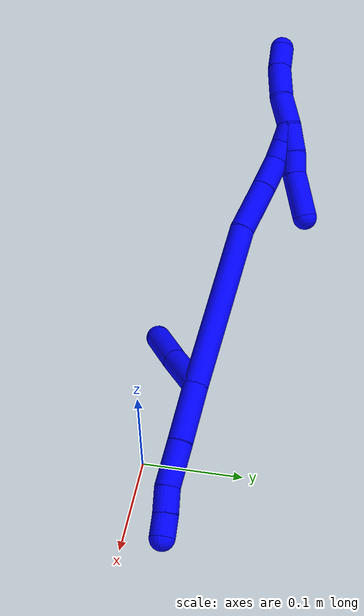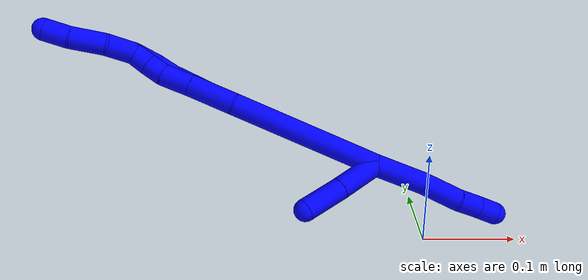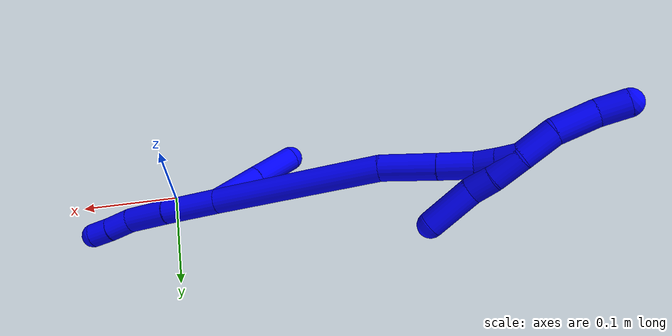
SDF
<sdf version="1.7">
 <world name="default">
  <model name="1">
   <static>0</static>
   <link name="1">
    <collision name="collision-cylinder-e_1_2_8">
     <pose>0.015161 -0.001856 -0.024793 3.06687 0.547582 2.87695</pose>
     <geometry><cylinder><radius>0.0125</radius><length>0.058241</length></cylinder></geometry>
     <surface>
      <friction><ode><mu>1.16</mu><mu2>1.16</mu2><slip1>0</slip1><slip2>0</slip2></ode></friction>
      <contact><ode><kp>1e+06</kp><kd>1</kd><max_vel>0</max_vel><min_depth>0.001</min_depth></ode></contact>
     </surface>
    </collision>
    <visual name="visual-cylinder-e_1_2_8">
     <pose>0.015161 -0.001856 -0.024793 3.06687 0.547582 2.87695</pose>
     <geometry><cylinder><radius>0.0125</radius><length>0.058241</length></cylinder></geometry>
     <material><ambient>0 0 1 1</ambient></material>
    </visual>
    <collision name="collision-cylinder-e_2_8_9">
     <pose>0.041038 -0.006677 -0.068767 2.98821 0.50449 2.56211</pose>
     <geometry><cylinder><radius>0.0125</radius><length>0.044341</length></cylinder></geometry>
     <surface>
      <friction><ode><mu>1.16</mu><mu2>1.16</mu2><slip1>0</slip1><slip2>0</slip2></ode></friction>
      <contact><ode><kp>1e+06</kp><kd>1</kd><max_vel>0</max_vel><min_depth>0.001</min_depth></ode></contact>
     </surface>
    </collision>
    <visual name="visual-cylinder-e_2_8_9">
     <pose>0.041038 -0.006677 -0.068767 2.98821 0.50449 2.56211</pose>
     <geometry><cylinder><radius>0.0125</radius><length>0.044341</length></cylinder></geometry>
     <material><ambient>0 0 1 1</ambient></material>
    </visual>
    <collision name="collision-cylinder-e_3_9_10">
     <pose>0.056532 -0.009133 -0.099882 -3.09889 0.380459 -2.9207</pose>
     <geometry><cylinder><radius>0.0125</radius><length>0.025729</length></cylinder></geometry>
     <surface>
      <friction><ode><mu>1.16</mu><mu2>1.16</mu2><slip1>0</slip1><slip2>0</slip2></ode></friction>
      <contact><ode><kp>1e+06</kp><kd>1</kd><max_vel>0</max_vel><min_depth>0.001</min_depth></ode></contact>
     </surface>
    </collision>
    <visual name="visual-cylinder-e_3_9_10">
     <pose>0.056532 -0.009133 -0.099882 -3.09889 0.380459 -2.9207</pose>
     <geometry><cylinder><radius>0.0125</radius><length>0.025729</length></cylinder></geometry>
     <material><ambient>0 0 1 1</ambient></material>
    </visual>
    <collision name="collision-cylinder-e_4_10_6">
     <pose>0.06586 -0.008794 -0.121657 3.12418 0.433084 3.06246</pose>
     <geometry><cylinder><radius>0.0125</radius><length>0.021689</length></cylinder></geometry>
     <surface>
      <friction><ode><mu>1.16</mu><mu2>1.16</mu2><slip1>0</slip1><slip2>0</slip2></ode></friction>
      <contact><ode><kp>1e+06</kp><kd>1</kd><max_vel>0</max_vel><min_depth>0.001</min_depth></ode></contact>
     </surface>
    </collision>
    <visual name="visual-cylinder-e_4_10_6">
     <pose>0.06586 -0.008794 -0.121657 3.12418 0.433084 3.06246</pose>
     <geometry><cylinder><radius>0.0125</radius><length>0.021689</length></cylinder></geometry>
     <material><ambient>0 0 1 1</ambient></material>
    </visual>
    <collision name="collision-cylinder-e_1_2_11">
     <pose>-0.007198 -0.020234 0.01481 0.93895 -0.279535 -0.142499</pose>
     <geometry><cylinder><radius>0.0125</radius><length>0.052175</length></cylinder></geometry>
     <surface>
      <friction><ode><mu>1.16</mu><mu2>1.16</mu2><slip1>0</slip1><slip2>0</slip2></ode></friction>
      <contact><ode><kp>1e+06</kp><kd>1</kd><max_vel>0</max_vel><min_depth>0.001</min_depth></ode></contact>
     </surface>
    </collision>
    <visual name="visual-cylinder-e_1_2_11">
     <pose>-0.007198 -0.020234 0.01481 0.93895 -0.279535 -0.142499</pose>
     <geometry><cylinder><radius>0.0125</radius><length>0.052175</length></cylinder></geometry>
     <material><ambient>0 0 1 1</ambient></material>
    </visual>
    <collision name="collision-cylinder-e_2_11_5">
     <pose>-0.02126 -0.058422 0.043844 0.900817 -0.291181 -0.14157</pose>
     <geometry><cylinder><radius>0.0125</radius><length>0.047825</length></cylinder></geometry>
     <surface>
      <friction><ode><mu>1.16</mu><mu2>1.16</mu2><slip1>0</slip1><slip2>0</slip2></ode></friction>
      <contact><ode><kp>1e+06</kp><kd>1</kd><max_vel>0</max_vel><min_depth>0.001</min_depth></ode></contact>
     </surface>
    </collision>
    <visual name="visual-cylinder-e_2_11_5">
     <pose>-0.02126 -0.058422 0.043844 0.900817 -0.291181 -0.14157</pose>
     <geometry><cylinder><radius>0.0125</radius><length>0.047825</length></cylinder></geometry>
     <material><ambient>0 0 1 1</ambient></material>
    </visual>
    <collision name="collision-cylinder-e_1_2_12">
     <pose>-0.044165 0.008982 0.07271 -0.122914 -0.542498 0.034223</pose>
     <geometry><cylinder><radius>0.0125</radius><length>0.17109</length></cylinder></geometry>
     <surface>
      <friction><ode><mu>1.16</mu><mu2>1.16</mu2><slip1>0</slip1><slip2>0</slip2></ode></friction>
      <contact><ode><kp>1e+06</kp><kd>1</kd><max_vel>0</max_vel><min_depth>0.001</min_depth></ode></contact>
     </surface>
    </collision>
    <visual name="visual-cylinder-e_1_2_12">
     <pose>-0.044165 0.008982 0.07271 -0.122914 -0.542498 0.034223</pose>
     <geometry><cylinder><radius>0.0125</radius><length>0.17109</length></cylinder></geometry>
     <material><ambient>0 0 1 1</ambient></material>
    </visual>
    <collision name="collision-cylinder-e_2_12_13">
     <pose>-0.10549 0.022499 0.165501 -0.222092 -0.694877 0.080714</pose>
     <geometry><cylinder><radius>0.0125</radius><length>0.053602</length></cylinder></geometry>
     <surface>
      <friction><ode><mu>1.16</mu><mu2>1.16</mu2><slip1>0</slip1><slip2>0</slip2></ode></friction>
      <contact><ode><kp>1e+06</kp><kd>1</kd><max_vel>0</max_vel><min_depth>0.001</min_depth></ode></contact>
     </surface>
    </collision>
    <visual name="visual-cylinder-e_2_12_13">
     <pose>-0.10549 0.022499 0.165501 -0.222092 -0.694877 0.080714</pose>
     <geometry><cylinder><radius>0.0125</radius><length>0.053602</length></cylinder></geometry>
     <material><ambient>0 0 1 1</ambient></material>
    </visual>
    <collision name="collision-cylinder-e_3_13_14">
     <pose>-0.133572 0.029363 0.19847 -0.178766 -0.695049 0.064904</pose>
     <geometry><cylinder><radius>0.0125</radius><length>0.034105</length></cylinder></geometry>
     <surface>
      <friction><ode><mu>1.16</mu><mu2>1.16</mu2><slip1>0</slip1><slip2>0</slip2></ode></friction>
      <contact><ode><kp>1e+06</kp><kd>1</kd><max_vel>0</max_vel><min_depth>0.001</min_depth></ode></contact>
     </surface>
    </collision>
    <visual name="visual-cylinder-e_3_13_14">
     <pose>-0.133572 0.029363 0.19847 -0.178766 -0.695049 0.064904</pose>
     <geometry><cylinder><radius>0.0125</radius><length>0.034105</length></cylinder></geometry>
     <material><ambient>0 0 1 1</ambient></material>
    </visual>
    <collision name="collision-cylinder-e_4_14_15">
     <pose>-0.149341 0.034808 0.22002 -0.345354 -0.484773 0.086194</pose>
     <geometry><cylinder><radius>0.0125</radius><length>0.020808</length></cylinder></geometry>
     <surface>
      <friction><ode><mu>1.16</mu><mu2>1.16</mu2><slip1>0</slip1><slip2>0</slip2></ode></friction>
      <contact><ode><kp>1e+06</kp><kd>1</kd><max_vel>0</max_vel><min_depth>0.001</min_depth></ode></contact>
     </surface>
    </collision>
    <visual name="visual-cylinder-e_4_14_15">
     <pose>-0.149341 0.034808 0.22002 -0.345354 -0.484773 0.086194</pose>
     <geometry><cylinder><radius>0.0125</radius><length>0.020808</length></cylinder></geometry>
     <material><ambient>0 0 1 1</ambient></material>
    </visual>
    <collision name="collision-cylinder-e_5_15_1">
     <pose>-0.158336 0.041299 0.237365 -0.370704 -0.418768 0.079647</pose>
     <geometry><cylinder><radius>0.0125</radius><length>0.020394</length></cylinder></geometry>
     <surface>
      <friction><ode><mu>1.16</mu><mu2>1.16</mu2><slip1>0</slip1><slip2>0</slip2></ode></friction>
      <contact><ode><kp>1e+06</kp><kd>1</kd><max_vel>0</max_vel><min_depth>0.001</min_depth></ode></contact>
     </surface>
    </collision>
    <visual name="visual-cylinder-e_5_15_1">
     <pose>-0.158336 0.041299 0.237365 -0.370704 -0.418768 0.079647</pose>
     <geometry><cylinder><radius>0.0125</radius><length>0.020394</length></cylinder></geometry>
     <material><ambient>0 0 1 1</ambient></material>
    </visual>
    <collision name="collision-cylinder-e_1_1_16">
     <pose>-0.161108 0.044946 0.231307 -3.12312 0.092966 -2.74962</pose>
     <geometry><cylinder><radius>0.0125</radius><length>0.029615</length></cylinder></geometry>
     <surface>
      <friction><ode><mu>1.16</mu><mu2>1.16</mu2><slip1>0</slip1><slip2>0</slip2></ode></friction>
      <contact><ode><kp>1e+06</kp><kd>1</kd><max_vel>0</max_vel><min_depth>0.001</min_depth></ode></contact>
     </surface>
    </collision>
    <visual name="visual-cylinder-e_1_1_16">
     <pose>-0.161108 0.044946 0.231307 -3.12312 0.092966 -2.74962</pose>
     <geometry><cylinder><radius>0.0125</radius><length>0.029615</length></cylinder></geometry>
     <material><ambient>0 0 1 1</ambient></material>
    </visual>
    <collision name="collision-cylinder-e_2_16_17">
     <pose>-0.157749 0.043965 0.205379 3.03 0.174477 2.0049</pose>
     <geometry><cylinder><radius>0.0125</radius><length>0.022861</length></cylinder></geometry>
     <surface>
      <friction><ode><mu>1.16</mu><mu2>1.16</mu2><slip1>0</slip1><slip2>0</slip2></ode></friction>
      <contact><ode><kp>1e+06</kp><kd>1</kd><max_vel>0</max_vel><min_depth>0.001</min_depth></ode></contact>
     </surface>
    </collision>
    <visual name="visual-cylinder-e_2_16_17">
     <pose>-0.157749 0.043965 0.205379 3.03 0.174477 2.0049</pose>
     <geometry><cylinder><radius>0.0125</radius><length>0.022861</length></cylinder></geometry>
     <material><ambient>0 0 1 1</ambient></material>
    </visual>
    <collision name="collision-cylinder-e_3_17_4">
     <pose>-0.154299 0.044445 0.170539 -3.06845 0.061722 -1.40166</pose>
     <geometry><cylinder><radius>0.0125</radius><length>0.047523</length></cylinder></geometry>
     <surface>
      <friction><ode><mu>1.16</mu><mu2>1.16</mu2><slip1>0</slip1><slip2>0</slip2></ode></friction>
      <contact><ode><kp>1e+06</kp><kd>1</kd><max_vel>0</max_vel><min_depth>0.001</min_depth></ode></contact>
     </surface>
    </collision>
    <visual name="visual-cylinder-e_3_17_4">
     <pose>-0.154299 0.044445 0.170539 -3.06845 0.061722 -1.40166</pose>
     <geometry><cylinder><radius>0.0125</radius><length>0.047523</length></cylinder></geometry>
     <material><ambient>0 0 1 1</ambient></material>
    </visual>
    <collision name="collision-cylinder-e_1_1_18">
     <pose>-0.164826 0.041484 0.262525 0.191248 -0.138762 -0.013331</pose>
     <geometry><cylinder><radius>0.0125</radius><length>0.033891</length></cylinder></geometry>
     <surface>
      <friction><ode><mu>1.16</mu><mu2>1.16</mu2><slip1>0</slip1><slip2>0</slip2></ode></friction>
      <contact><ode><kp>1e+06</kp><kd>1</kd><max_vel>0</max_vel><min_depth>0.001</min_depth></ode></contact>
     </surface>
    </collision>
    <visual name="visual-cylinder-e_1_1_18">
     <pose>-0.164826 0.041484 0.262525 0.191248 -0.138762 -0.013331</pose>
     <geometry><cylinder><radius>0.0125</radius><length>0.033891</length></cylinder></geometry>
     <material><ambient>0 0 1 1</ambient></material>
    </visual>
    <collision name="collision-cylinder-e_2_18_19">
     <pose>-0.174587 0.034393 0.296408 0.220474 -0.394011 -0.044177</pose>
     <geometry><cylinder><radius>0.0125</radius><length>0.038637</length></cylinder></geometry>
     <surface>
      <friction><ode><mu>1.16</mu><mu2>1.16</mu2><slip1>0</slip1><slip2>0</slip2></ode></friction>
      <contact><ode><kp>1e+06</kp><kd>1</kd><max_vel>0</max_vel><min_depth>0.001</min_depth></ode></contact>
     </surface>
    </collision>
    <visual name="visual-cylinder-e_2_18_19">
     <pose>-0.174587 0.034393 0.296408 0.220474 -0.394011 -0.044177</pose>
     <geometry><cylinder><radius>0.0125</radius><length>0.038637</length></cylinder></geometry>
     <material><ambient>0 0 1 1</ambient></material>
    </visual>
    <collision name="collision-cylinder-e_3_19_3">
     <pose>-0.18828 0.02994 0.32602 0.0452 -0.474641 -0.010935</pose>
     <geometry><cylinder><radius>0.0125</radius><length>0.027472</length></cylinder></geometry>
     <surface>
      <friction><ode><mu>1.16</mu><mu2>1.16</mu2><slip1>0</slip1><slip2>0</slip2></ode></friction>
      <contact><ode><kp>1e+06</kp><kd>1</kd><max_vel>0</max_vel><min_depth>0.001</min_depth></ode></contact>
     </surface>
    </collision>
    <visual name="visual-cylinder-e_3_19_3">
     <pose>-0.18828 0.02994 0.32602 0.0452 -0.474641 -0.010935</pose>
     <geometry><cylinder><radius>0.0125</radius><length>0.027472</length></cylinder></geometry>
     <material><ambient>0 0 1 1</ambient></material>
    </visual>
    <collision name="collision-sphere-3">
     <pose>-0.194558 0.029388 0.338225 0 -0 0</pose>
     <geometry><sphere><radius>0.0125</radius></sphere></geometry>
     <surface>
      <friction><ode><mu>1.16</mu><mu2>1.16</mu2><slip1>0</slip1><slip2>0</slip2></ode></friction>
      <contact><ode><kp>1e+06</kp><kd>1</kd><max_vel>0</max_vel><min_depth>0.001</min_depth></ode></contact>
     </surface>
    </collision>
    <visual name="visual-sphere-3">
     <pose>-0.194558 0.029388 0.338225 0 -0 0</pose>
     <geometry><sphere><radius>0.0125</radius></sphere></geometry>
     <material><ambient>0 0 1 1</ambient></material>
    </visual>
    <collision name="collision-sphere-19">
     <pose>-0.182003 0.030492 0.313815 0 -0 0</pose>
     <geometry><sphere><radius>0.0125</radius></sphere></geometry>
     <surface>
      <friction><ode><mu>1.16</mu><mu2>1.16</mu2><slip1>0</slip1><slip2>0</slip2></ode></friction>
      <contact><ode><kp>1e+06</kp><kd>1</kd><max_vel>0</max_vel><min_depth>0.001</min_depth></ode></contact>
     </surface>
    </collision>
    <visual name="visual-sphere-19">
     <pose>-0.182003 0.030492 0.313815 0 -0 0</pose>
     <geometry><sphere><radius>0.0125</radius></sphere></geometry>
     <material><ambient>0 0 1 1</ambient></material>
    </visual>
    <collision name="collision-sphere-11">
     <pose>-0.014395 -0.040467 0.02962 0 -0 0</pose>
     <geometry><sphere><radius>0.0125</radius></sphere></geometry>
     <surface>
      <friction><ode><mu>1.16</mu><mu2>1.16</mu2><slip1>0</slip1><slip2>0</slip2></ode></friction>
      <contact><ode><kp>1e+06</kp><kd>1</kd><max_vel>0</max_vel><min_depth>0.001</min_depth></ode></contact>
     </surface>
    </collision>
    <visual name="visual-sphere-11">
     <pose>-0.014395 -0.040467 0.02962 0 -0 0</pose>
     <geometry><sphere><radius>0.0125</radius></sphere></geometry>
     <material><ambient>0 0 1 1</ambient></material>
    </visual>
    <collision name="collision-sphere-6">
     <pose>0.070411 -0.008966 -0.131499 0 -0 0</pose>
     <geometry><sphere><radius>0.0125</radius></sphere></geometry>
     <surface>
      <friction><ode><mu>1.16</mu><mu2>1.16</mu2><slip1>0</slip1><slip2>0</slip2></ode></friction>
      <contact><ode><kp>1e+06</kp><kd>1</kd><max_vel>0</max_vel><min_depth>0.001</min_depth></ode></contact>
     </surface>
    </collision>
    <visual name="visual-sphere-6">
     <pose>0.070411 -0.008966 -0.131499 0 -0 0</pose>
     <geometry><sphere><radius>0.0125</radius></sphere></geometry>
     <material><ambient>0 0 1 1</ambient></material>
    </visual>
    <collision name="collision-sphere-10">
     <pose>0.061309 -0.008623 -0.111815 0 -0 0</pose>
     <geometry><sphere><radius>0.0125</radius></sphere></geometry>
     <surface>
      <friction><ode><mu>1.16</mu><mu2>1.16</mu2><slip1>0</slip1><slip2>0</slip2></ode></friction>
      <contact><ode><kp>1e+06</kp><kd>1</kd><max_vel>0</max_vel><min_depth>0.001</min_depth></ode></contact>
     </surface>
    </collision>
    <visual name="visual-sphere-10">
     <pose>0.061309 -0.008623 -0.111815 0 -0 0</pose>
     <geometry><sphere><radius>0.0125</radius></sphere></geometry>
     <material><ambient>0 0 1 1</ambient></material>
    </visual>
    <collision name="collision-sphere-9">
     <pose>0.051754 -0.009643 -0.087948 0 -0 0</pose>
     <geometry><sphere><radius>0.0125</radius></sphere></geometry>
     <surface>
      <friction><ode><mu>1.16</mu><mu2>1.16</mu2><slip1>0</slip1><slip2>0</slip2></ode></friction>
      <contact><ode><kp>1e+06</kp><kd>1</kd><max_vel>0</max_vel><min_depth>0.001</min_depth></ode></contact>
     </surface>
    </collision>
    <visual name="visual-sphere-9">
     <pose>0.051754 -0.009643 -0.087948 0 -0 0</pose>
     <geometry><sphere><radius>0.0125</radius></sphere></geometry>
     <material><ambient>0 0 1 1</ambient></material>
    </visual>
    <collision name="collision-sphere-2">
     <geometry><sphere><radius>0.0125</radius></sphere></geometry>
     <surface>
      <friction><ode><mu>1.16</mu><mu2>1.16</mu2><slip1>0</slip1><slip2>0</slip2></ode></friction>
      <contact><ode><kp>1e+06</kp><kd>1</kd><max_vel>0</max_vel><min_depth>0.001</min_depth></ode></contact>
     </surface>
    </collision>
    <visual name="visual-sphere-2">
     <geometry><sphere><radius>0.0125</radius></sphere></geometry>
     <material><ambient>0 0 1 1</ambient></material>
    </visual>
    <collision name="collision-sphere-8">
     <pose>0.030322 -0.003712 -0.049587 0 -0 0</pose>
     <geometry><sphere><radius>0.0125</radius></sphere></geometry>
     <surface>
      <friction><ode><mu>1.16</mu><mu2>1.16</mu2><slip1>0</slip1><slip2>0</slip2></ode></friction>
      <contact><ode><kp>1e+06</kp><kd>1</kd><max_vel>0</max_vel><min_depth>0.001</min_depth></ode></contact>
     </surface>
    </collision>
    <visual name="visual-sphere-8">
     <pose>0.030322 -0.003712 -0.049587 0 -0 0</pose>
     <geometry><sphere><radius>0.0125</radius></sphere></geometry>
     <material><ambient>0 0 1 1</ambient></material>
    </visual>
    <collision name="collision-sphere-5">
     <pose>-0.028125 -0.076377 0.058068 0 -0 0</pose>
     <geometry><sphere><radius>0.0125</radius></sphere></geometry>
     <surface>
      <friction><ode><mu>1.16</mu><mu2>1.16</mu2><slip1>0</slip1><slip2>0</slip2></ode></friction>
      <contact><ode><kp>1e+06</kp><kd>1</kd><max_vel>0</max_vel><min_depth>0.001</min_depth></ode></contact>
     </surface>
    </collision>
    <visual name="visual-sphere-5">
     <pose>-0.028125 -0.076377 0.058068 0 -0 0</pose>
     <geometry><sphere><radius>0.0125</radius></sphere></geometry>
     <material><ambient>0 0 1 1</ambient></material>
    </visual>
    <collision name="collision-sphere-12">
     <pose>-0.08833 0.017965 0.14542 0 -0 0</pose>
     <geometry><sphere><radius>0.0125</radius></sphere></geometry>
     <surface>
      <friction><ode><mu>1.16</mu><mu2>1.16</mu2><slip1>0</slip1><slip2>0</slip2></ode></friction>
      <contact><ode><kp>1e+06</kp><kd>1</kd><max_vel>0</max_vel><min_depth>0.001</min_depth></ode></contact>
     </surface>
    </collision>
    <visual name="visual-sphere-12">
     <pose>-0.08833 0.017965 0.14542 0 -0 0</pose>
     <geometry><sphere><radius>0.0125</radius></sphere></geometry>
     <material><ambient>0 0 1 1</ambient></material>
    </visual>
    <collision name="collision-sphere-13">
     <pose>-0.122651 0.027034 0.185582 0 -0 0</pose>
     <geometry><sphere><radius>0.0125</radius></sphere></geometry>
     <surface>
      <friction><ode><mu>1.16</mu><mu2>1.16</mu2><slip1>0</slip1><slip2>0</slip2></ode></friction>
      <contact><ode><kp>1e+06</kp><kd>1</kd><max_vel>0</max_vel><min_depth>0.001</min_depth></ode></contact>
     </surface>
    </collision>
    <visual name="visual-sphere-13">
     <pose>-0.122651 0.027034 0.185582 0 -0 0</pose>
     <geometry><sphere><radius>0.0125</radius></sphere></geometry>
     <material><ambient>0 0 1 1</ambient></material>
    </visual>
    <collision name="collision-sphere-14">
     <pose>-0.144493 0.031692 0.211358 0 -0 0</pose>
     <geometry><sphere><radius>0.0125</radius></sphere></geometry>
     <surface>
      <friction><ode><mu>1.16</mu><mu2>1.16</mu2><slip1>0</slip1><slip2>0</slip2></ode></friction>
      <contact><ode><kp>1e+06</kp><kd>1</kd><max_vel>0</max_vel><min_depth>0.001</min_depth></ode></contact>
     </surface>
    </collision>
    <visual name="visual-sphere-14">
     <pose>-0.144493 0.031692 0.211358 0 -0 0</pose>
     <geometry><sphere><radius>0.0125</radius></sphere></geometry>
     <material><ambient>0 0 1 1</ambient></material>
    </visual>
    <collision name="collision-sphere-15">
     <pose>-0.15419 0.037924 0.228682 0 -0 0</pose>
     <geometry><sphere><radius>0.0125</radius></sphere></geometry>
     <surface>
      <friction><ode><mu>1.16</mu><mu2>1.16</mu2><slip1>0</slip1><slip2>0</slip2></ode></friction>
      <contact><ode><kp>1e+06</kp><kd>1</kd><max_vel>0</max_vel><min_depth>0.001</min_depth></ode></contact>
     </surface>
    </collision>
    <visual name="visual-sphere-15">
     <pose>-0.15419 0.037924 0.228682 0 -0 0</pose>
     <geometry><sphere><radius>0.0125</radius></sphere></geometry>
     <material><ambient>0 0 1 1</ambient></material>
    </visual>
    <collision name="collision-sphere-1">
     <pose>-0.162483 0.044674 0.246048 0 -0 0</pose>
     <geometry><sphere><radius>0.0125</radius></sphere></geometry>
     <surface>
      <friction><ode><mu>1.16</mu><mu2>1.16</mu2><slip1>0</slip1><slip2>0</slip2></ode></friction>
      <contact><ode><kp>1e+06</kp><kd>1</kd><max_vel>0</max_vel><min_depth>0.001</min_depth></ode></contact>
     </surface>
    </collision>
    <visual name="visual-sphere-1">
     <pose>-0.162483 0.044674 0.246048 0 -0 0</pose>
     <geometry><sphere><radius>0.0125</radius></sphere></geometry>
     <material><ambient>0 0 1 1</ambient></material>
    </visual>
    <collision name="collision-sphere-18">
     <pose>-0.16717 0.038294 0.279002 0 -0 0</pose>
     <geometry><sphere><radius>0.0125</radius></sphere></geometry>
     <surface>
      <friction><ode><mu>1.16</mu><mu2>1.16</mu2><slip1>0</slip1><slip2>0</slip2></ode></friction>
      <contact><ode><kp>1e+06</kp><kd>1</kd><max_vel>0</max_vel><min_depth>0.001</min_depth></ode></contact>
     </surface>
    </collision>
    <visual name="visual-sphere-18">
     <pose>-0.16717 0.038294 0.279002 0 -0 0</pose>
     <geometry><sphere><radius>0.0125</radius></sphere></geometry>
     <material><ambient>0 0 1 1</ambient></material>
    </visual>
    <collision name="collision-sphere-16">
     <pose>-0.159733 0.045219 0.216566 0 -0 0</pose>
     <geometry><sphere><radius>0.0125</radius></sphere></geometry>
     <surface>
      <friction><ode><mu>1.16</mu><mu2>1.16</mu2><slip1>0</slip1><slip2>0</slip2></ode></friction>
      <contact><ode><kp>1e+06</kp><kd>1</kd><max_vel>0</max_vel><min_depth>0.001</min_depth></ode></contact>
     </surface>
    </collision>
    <visual name="visual-sphere-16">
     <pose>-0.159733 0.045219 0.216566 0 -0 0</pose>
     <geometry><sphere><radius>0.0125</radius></sphere></geometry>
     <material><ambient>0 0 1 1</ambient></material>
    </visual>
    <collision name="collision-sphere-17">
     <pose>-0.155765 0.042711 0.194192 0 -0 0</pose>
     <geometry><sphere><radius>0.0125</radius></sphere></geometry>
     <surface>
      <friction><ode><mu>1.16</mu><mu2>1.16</mu2><slip1>0</slip1><slip2>0</slip2></ode></friction>
      <contact><ode><kp>1e+06</kp><kd>1</kd><max_vel>0</max_vel><min_depth>0.001</min_depth></ode></contact>
     </surface>
    </collision>
    <visual name="visual-sphere-17">
     <pose>-0.155765 0.042711 0.194192 0 -0 0</pose>
     <geometry><sphere><radius>0.0125</radius></sphere></geometry>
     <material><ambient>0 0 1 1</ambient></material>
    </visual>
    <collision name="collision-sphere-4">
     <pose>-0.152833 0.046178 0.146886 0 -0 0</pose>
     <geometry><sphere><radius>0.0125</radius></sphere></geometry>
     <surface>
      <friction><ode><mu>1.16</mu><mu2>1.16</mu2><slip1>0</slip1><slip2>0</slip2></ode></friction>
      <contact><ode><kp>1e+06</kp><kd>1</kd><max_vel>0</max_vel><min_depth>0.001</min_depth></ode></contact>
     </surface>
    </collision>
    <visual name="visual-sphere-4">
     <pose>-0.152833 0.046178 0.146886 0 -0 0</pose>
     <geometry><sphere><radius>0.0125</radius></sphere></geometry>
     <material><ambient>0 0 1 1</ambient></material>
    </visual>
    <inertial>
     <pose>-0.070832 0.011516 0.106164 0 -0 0</pose>
     <mass>0.75</mass>
     <inertia>
      <ixx>0.000386</ixx>
      <ixy>0</ixy>
      <ixz>0</ixz>
      <iyy>0.000509</iyy>
      <iyz>0</iyz>
      <izz>0.000214</izz>
     </inertia>
    </inertial>
   </link>
   <pose>-0.050449 0.044719 0.069153 0.838011 -0.420272 -0.775621</pose>
  </model>
 </world>
</sdf>
